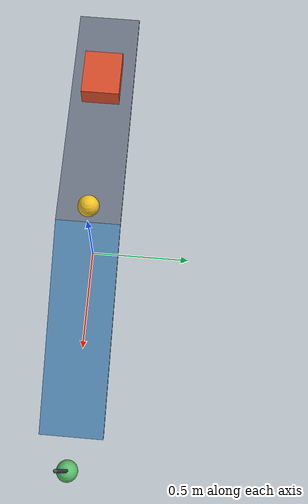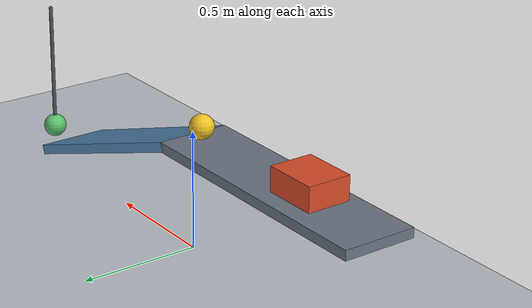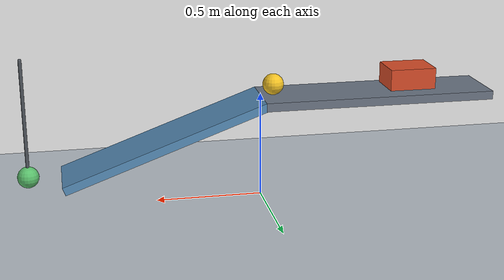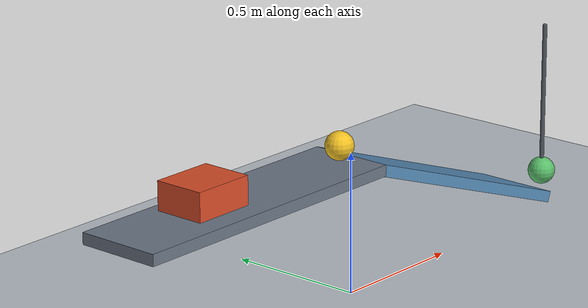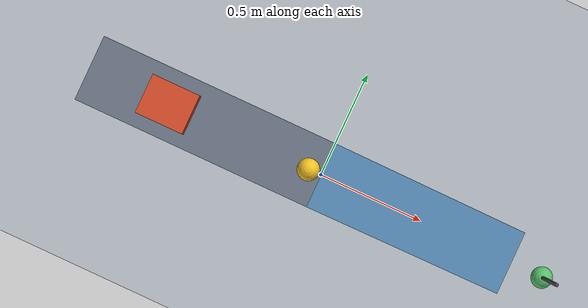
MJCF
<mujoco model="spring_cart_ramp_pendulum">
  <compiler angle="degree" autolimits="true"/>
  <option timestep="0.002" gravity="0 0 -9.81" integrator="implicitfast" solver="Newton" iterations="80" cone="elliptic"/>

  <!-- MuJoCo has no exact restitution attribute. The contact damping ratio below gives nominal restitution 0.05; actual restitution depends on the impact and numerical resolution. -->
  <!-- Sliding friction is 0.68. Small torsional and rolling friction allow ball1 to settle on the floor. -->

  <visual>
    <headlight ambient="0.35 0.35 0.35" diffuse="0.75 0.75 0.75" specular="0.2 0.2 0.2"/>
  </visual>

  <worldbody>
    <light name="scene_light" pos="0 0 3" dir="0 0 -1"/>
    <camera name="overview" pos="0.3 -3.2 1.8" xyaxes="1 0 0 0 0.36 0.93295"/>

    <geom name="floor" type="plane" pos="0 0 0" size="4 3 0.1" friction="0.68 0.005 0.005" condim="6" solref="0.01 0.690107" solimp="0.99 0.99 0.001" rgba="0.72 0.75 0.78 1"/>

    <!-- The horizontal launch deck keeps ball1 stationary until the cart arrives. Its top joins ramp1's high edge. -->
    <body name="launch_deck" pos="-0.55 0 0.472020143">
      <geom name="launch_deck_surface" type="box" size="0.55 0.15 0.02" friction="0.68 0.005 0.005" condim="6" solref="0.01 0.690107" solimp="0.99 0.99 0.001" rgba="0.42 0.46 0.52 1"/>
    </body>

    <!-- The upper surface is 1.00 m long and 0.30 m wide, descending 20 degrees toward +x. Its low edge is at z=0.15. -->
    <body name="ramp1" pos="0.469846310 0 0.321010072" quat="0.984807753 0 0.173648178 0">
      <geom name="ramp1_surface" type="box" pos="0 0 -0.02" size="0.50 0.15 0.02" friction="0.68 0.005 0.005" condim="6" solref="0.01 0.690107" solimp="0.99 0.99 0.001" rgba="0.34 0.55 0.72 1"/>
    </body>

    <!-- The slide carries the cart clear of the deck, avoiding dry-friction losses in its ideal guide. Initial face-to-ball clearance is exactly 0.50 m. -->
    <body name="cart1" pos="-0.72 0 0.552020143">
      <joint name="cart1_slide" type="slide" axis="1 0 0" damping="0.20" limited="true" range="0 0.60" solreflimit="0.01 0.690107" solimplimit="0.99 0.99 0.001"/>
      <geom name="cart1_chassis" type="box" size="0.11 0.09 0.05" mass="0.50" friction="0.68 0.005 0.005" condim="6" solref="0.01 0.690107" solimp="0.99 0.99 0.001" rgba="0.85 0.30 0.16 1"/>
    </body>

    <body name="ball1" pos="-0.06 0 0.542020143">
      <freejoint name="ball1_free"/>
      <geom name="ball1_sphere" type="sphere" size="0.05" mass="0.20" friction="0.68 0.005 0.005" condim="6" solref="0.01 0.690107" solimp="0.99 0.99 0.001" rgba="0.95 0.76 0.14 1"/>
    </body>

    <!-- Ramp low edge: x=0.939692621. The resting bob's nearest surface is x=1.039692621, leaving a 0.10 m horizontal gap. -->
    <body name="pendulum1" pos="1.089692621 0 0.71">
      <joint name="pendulum1_hinge" type="hinge" axis="0 1 0" damping="0.04"/>
      <geom name="pendulum1_rod" type="capsule" fromto="0 0 0 0 0 -0.55" size="0.008" mass="0.02" contype="0" conaffinity="0" rgba="0.30 0.32 0.35 1"/>
      <geom name="pendulum1_bob" type="sphere" pos="0 0 -0.55" size="0.05" mass="0.20" friction="0.68 0.005 0.005" condim="6" solref="0.01 0.690107" solimp="0.99 0.99 0.001" rgba="0.35 0.75 0.42 1"/>
    </body>
  </worldbody>

  <tendon>
    <fixed name="cart1_axial_spring" stiffness="18" damping="0" springlength="0.20 1.00">
      <joint joint="cart1_slide" coef="1"/>
    </fixed>
  </tendon>

  <keyframe>
    <key name="start" time="0" qpos="0 -0.06 0 0.542020143 1 0 0 0 0" qvel="0 0 0 0 0 0 0 0"/>
  </keyframe>
</mujoco>
